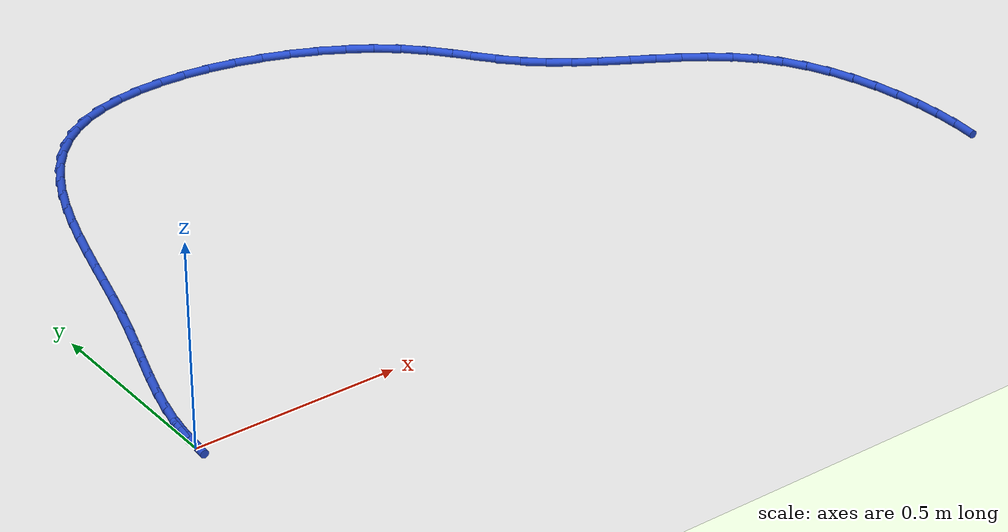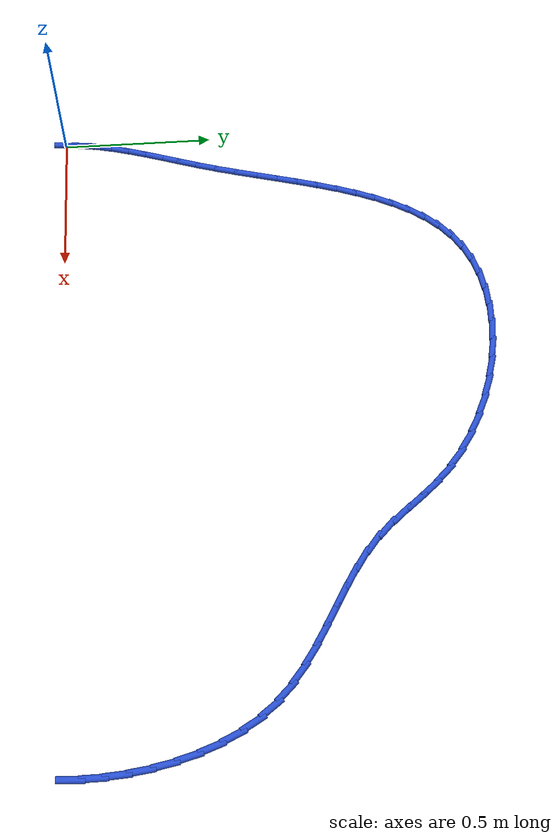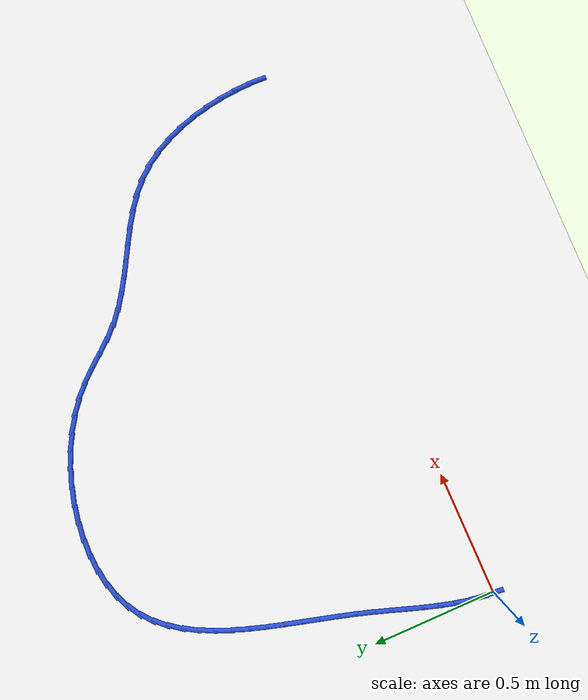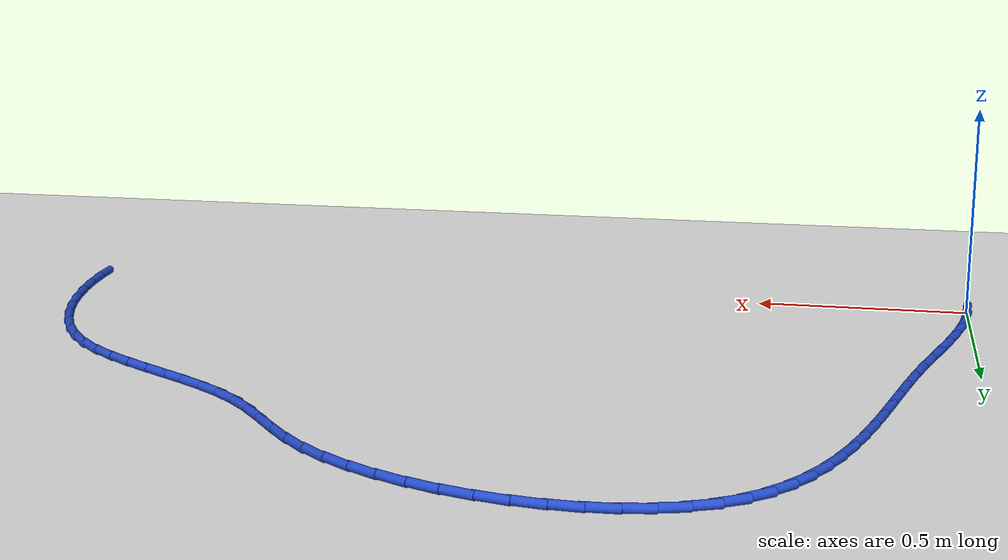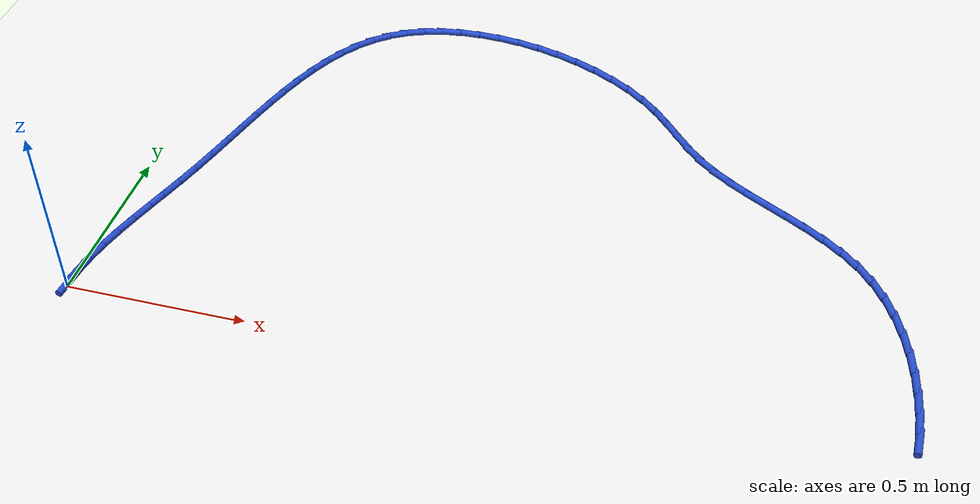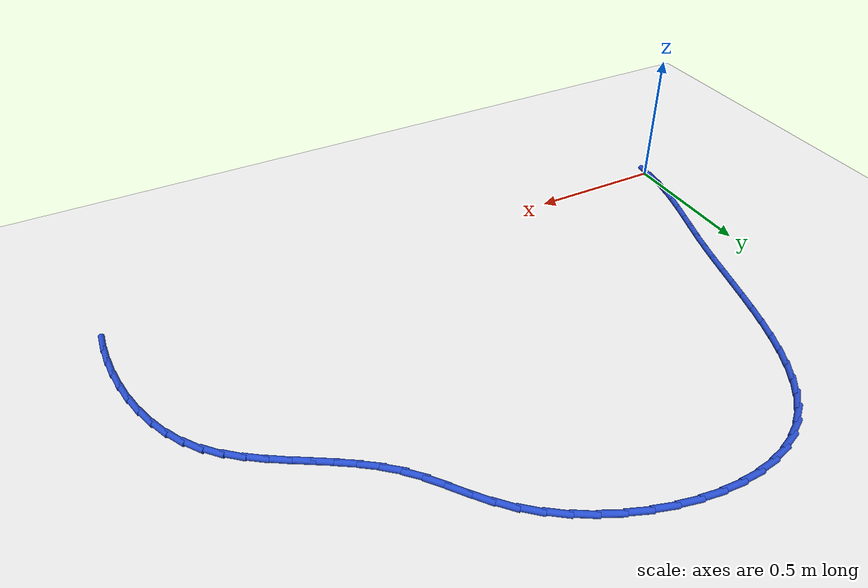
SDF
<sdf version="1.6">
 <world name="default">
  <model name="ground_plane">
   <static>1</static>
   <link name="link">
    <collision name="collision">
     <geometry><plane><normal>0 0 1</normal><size>100 100</size></plane></geometry>
     <surface><friction><ode><mu>100</mu><mu2>50</mu2></ode></friction></surface>
    </collision>
    <visual name="visual">
     <cast_shadows>0</cast_shadows>
     <geometry><plane><normal>0 0 1</normal><size>100 100</size></plane></geometry>
     <material>
      <script><uri>file://media/materials/scripts/gazebo.material</uri><name>Gazebo/WhiteGlow</name></script>
     </material>
    </visual>
   </link>
  </model>
  <model name="line">
   <link name="link_1">
    <pose>0.005791417262170077 0.06033211300853478 0.01 0 1.57 1.398286522696529</pose>
    <collision name="collision">
     <geometry><cylinder><radius>0.01</radius><length>0.08</length></cylinder></geometry>
    </collision>
    <visual name="visual">
     <material>
      <script><name>Gazebo/Blue</name><uri>file://media/materials/scripts/gazebo.material</uri></script>
     </material>
     <geometry><cylinder><radius>0.01</radius><length>0.08</length></cylinder></geometry>
    </visual>
   </link>
   <link name="link_2">
    <pose>0.016213847294796645 0.12014804725382705 0.01 0 1.57 1.3365642725188103</pose>
    <collision name="collision">
     <geometry><cylinder><radius>0.01</radius><length>0.08</length></cylinder></geometry>
    </collision>
    <visual name="visual">
     <material>
      <script><name>Gazebo/Blue</name><uri>file://media/materials/scripts/gazebo.material</uri></script>
     </material>
     <geometry><cylinder><radius>0.01</radius><length>0.08</length></cylinder></geometry>
    </visual>
   </link>
   <link name="link_3">
    <pose>0.03044249601915345 0.17977897757829422 0.01 0 1.57 1.290473283274684</pose>
    <collision name="collision">
     <geometry><cylinder><radius>0.01</radius><length>0.08</length></cylinder></geometry>
    </collision>
    <visual name="visual">
     <material>
      <script><name>Gazebo/Blue</name><uri>file://media/materials/scripts/gazebo.material</uri></script>
     </material>
     <geometry><cylinder><radius>0.01</radius><length>0.08</length></cylinder></geometry>
    </visual>
   </link>
   <link name="link_4">
    <pose>0.04765256935651429 0.23955607882435376 0.01 0 1.57 1.2598100341483265</pose>
    <collision name="collision">
     <geometry><cylinder><radius>0.01</radius><length>0.08</length></cylinder></geometry>
    </collision>
    <visual name="visual">
     <material>
      <script><name>Gazebo/Blue</name><uri>file://media/materials/scripts/gazebo.material</uri></script>
     </material>
     <geometry><cylinder><radius>0.01</radius><length>0.08</length></cylinder></geometry>
    </visual>
   </link>
   <link name="link_5">
    <pose>0.06701927322815289 0.29981052583442314 0.01 0 1.57 1.243980994895997</pose>
    <collision name="collision">
     <geometry><cylinder><radius>0.01</radius><length>0.08</length></cylinder></geometry>
    </collision>
    <visual name="visual">
     <material>
      <script><name>Gazebo/Blue</name><uri>file://media/materials/scripts/gazebo.material</uri></script>
     </material>
     <geometry><cylinder><radius>0.01</radius><length>0.08</length></cylinder></geometry>
    </visual>
   </link>
   <link name="link_6">
    <pose>0.08771781355534311 0.3608734934509199 0.01 0 1.57 1.2422412927426736</pose>
    <collision name="collision">
     <geometry><cylinder><radius>0.01</radius><length>0.08</length></cylinder></geometry>
    </collision>
    <visual name="visual">
     <material>
      <script><name>Gazebo/Blue</name><uri>file://media/materials/scripts/gazebo.material</uri></script>
     </material>
     <geometry><cylinder><radius>0.01</radius><length>0.08</length></cylinder></geometry>
    </visual>
   </link>
   <link name="link_7">
    <pose>0.10892339625935861 0.42307615651626107 0.01 0 1.57 1.2538121363242396</pose>
    <collision name="collision">
     <geometry><cylinder><radius>0.01</radius><length>0.08</length></cylinder></geometry>
    </collision>
    <visual name="visual">
     <material>
      <script><name>Gazebo/Blue</name><uri>file://media/materials/scripts/gazebo.material</uri></script>
     </material>
     <geometry><cylinder><radius>0.01</radius><length>0.08</length></cylinder></geometry>
    </visual>
   </link>
   <link name="link_8">
    <pose>0.12981122726147326 0.4867496898728646 0.01 0 1.57 1.2760298569545596</pose>
    <collision name="collision">
     <geometry><cylinder><radius>0.01</radius><length>0.08</length></cylinder></geometry>
    </collision>
    <visual name="visual">
     <material>
      <script><name>Gazebo/Blue</name><uri>file://media/materials/scripts/gazebo.material</uri></script>
     </material>
     <geometry><cylinder><radius>0.01</radius><length>0.08</length></cylinder></geometry>
    </visual>
   </link>
   <link name="link_9">
    <pose>0.14966594007184378 0.5521448940590044 0.01 0 1.57 1.294548348344521</pose>
    <collision name="collision">
     <geometry><cylinder><radius>0.01</radius><length>0.08</length></cylinder></geometry>
    </collision>
    <visual name="visual">
     <material>
      <script><name>Gazebo/Blue</name><uri>file://media/materials/scripts/gazebo.material</uri></script>
     </material>
     <geometry><cylinder><radius>0.01</radius><length>0.08</length></cylinder></geometry>
    </visual>
   </link>
   <link name="link_10">
    <pose>0.16859342630460544 0.6189093574860756 0.01 0 1.57 1.30360538274102</pose>
    <collision name="collision">
     <geometry><cylinder><radius>0.01</radius><length>0.08</length></cylinder></geometry>
    </collision>
    <visual name="visual">
     <material>
      <script><name>Gazebo/Blue</name><uri>file://media/materials/scripts/gazebo.material</uri></script>
     </material>
     <geometry><cylinder><radius>0.01</radius><length>0.08</length></cylinder></geometry>
    </visual>
   </link>
   <link name="link_11">
    <pose>0.18707262465838037 0.6864166663679072 0.01 0 1.57 1.3035913028330612</pose>
    <collision name="collision">
     <geometry><cylinder><radius>0.01</radius><length>0.08</length></cylinder></geometry>
    </collision>
    <visual name="visual">
     <material>
      <script><name>Gazebo/Blue</name><uri>file://media/materials/scripts/gazebo.material</uri></script>
     </material>
     <geometry><cylinder><radius>0.01</radius><length>0.08</length></cylinder></geometry>
    </visual>
   </link>
   <link name="link_12">
    <pose>0.20558434236194545 0.7540390344873674 0.01 0 1.57 1.2945524667272263</pose>
    <collision name="collision">
     <geometry><cylinder><radius>0.01</radius><length>0.08</length></cylinder></geometry>
    </collision>
    <visual name="visual">
     <material>
      <script><name>Gazebo/Blue</name><uri>file://media/materials/scripts/gazebo.material</uri></script>
     </material>
     <geometry><cylinder><radius>0.01</radius><length>0.08</length></cylinder></geometry>
    </visual>
   </link>
   <link name="link_13">
    <pose>0.22460938664407729 0.8211486756273239 0.01 0 1.57 1.2761656620018444</pose>
    <collision name="collision">
     <geometry><cylinder><radius>0.01</radius><length>0.08</length></cylinder></geometry>
    </collision>
    <visual name="visual">
     <material>
      <script><name>Gazebo/Blue</name><uri>file://media/materials/scripts/gazebo.material</uri></script>
     </material>
     <geometry><cylinder><radius>0.01</radius><length>0.08</length></cylinder></geometry>
    </visual>
   </link>
   <link name="link_14">
    <pose>0.24462856473355266 0.8871178035706447 0.01 0 1.57 1.2477308114004202</pose>
    <collision name="collision">
     <geometry><cylinder><radius>0.01</radius><length>0.08</length></cylinder></geometry>
    </collision>
    <visual name="visual">
     <material>
      <script><name>Gazebo/Blue</name><uri>file://media/materials/scripts/gazebo.material</uri></script>
     </material>
     <geometry><cylinder><radius>0.01</radius><length>0.08</length></cylinder></geometry>
    </visual>
   </link>
   <link name="link_15">
    <pose>0.26612268385914833 0.9513186321001978 0.01 0 1.57 1.2081574771541412</pose>
    <collision name="collision">
     <geometry><cylinder><radius>0.01</radius><length>0.08</length></cylinder></geometry>
    </collision>
    <visual name="visual">
     <material>
      <script><name>Gazebo/Blue</name><uri>file://media/materials/scripts/gazebo.material</uri></script>
     </material>
     <geometry><cylinder><radius>0.01</radius><length>0.08</length></cylinder></geometry>
    </visual>
   </link>
   <link name="link_16">
    <pose>0.28957255124964126 1.0131233749988517 0.01 0 1.57 1.1559639665454837</pose>
    <collision name="collision">
     <geometry><cylinder><radius>0.01</radius><length>0.08</length></cylinder></geometry>
    </collision>
    <visual name="visual">
     <material>
      <script><name>Gazebo/Blue</name><uri>file://media/materials/scripts/gazebo.material</uri></script>
     </material>
     <geometry><cylinder><radius>0.01</radius><length>0.08</length></cylinder></geometry>
    </visual>
   </link>
   <link name="link_17">
    <pose>0.3154589741338079 1.0719042460494737 0.01 0 1.57 1.0893286654853482</pose>
    <collision name="collision">
     <geometry><cylinder><radius>0.01</radius><length>0.08</length></cylinder></geometry>
    </collision>
    <visual name="visual">
     <material>
      <script><name>Gazebo/Blue</name><uri>file://media/materials/scripts/gazebo.material</uri></script>
     </material>
     <geometry><cylinder><radius>0.01</radius><length>0.08</length></cylinder></geometry>
    </visual>
   </link>
   <link name="link_18">
    <pose>0.3442627597404253 1.1270334590349322 0.01 0 1.57 1.0062676093985456</pose>
    <collision name="collision">
     <geometry><cylinder><radius>0.01</radius><length>0.08</length></cylinder></geometry>
    </collision>
    <visual name="visual">
     <material>
      <script><name>Gazebo/Blue</name><uri>file://media/materials/scripts/gazebo.material</uri></script>
     </material>
     <geometry><cylinder><radius>0.01</radius><length>0.08</length></cylinder></geometry>
    </visual>
   </link>
   <link name="link_19">
    <pose>0.3764647152982702 1.1778832277380957 0.01 0 1.57 0.9050528995444811</pose>
    <collision name="collision">
     <geometry><cylinder><radius>0.01</radius><length>0.08</length></cylinder></geometry>
    </collision>
    <visual name="visual">
     <material>
      <script><name>Gazebo/Blue</name><uri>file://media/materials/scripts/gazebo.material</uri></script>
     </material>
     <geometry><cylinder><radius>0.01</radius><length>0.08</length></cylinder></geometry>
    </visual>
   </link>
   <link name="link_20">
    <pose>0.4125456480361194 1.2238257659418317 0.01 0 1.57 0.7849875711798635</pose>
    <collision name="collision">
     <geometry><cylinder><radius>0.01</radius><length>0.08</length></cylinder></geometry>
    </collision>
    <visual name="visual">
     <material>
      <script><name>Gazebo/Blue</name><uri>file://media/materials/scripts/gazebo.material</uri></script>
     </material>
     <geometry><cylinder><radius>0.01</radius><length>0.08</length></cylinder></geometry>
    </visual>
   </link>
   <link name="link_21">
    <pose>0.45298636518274926 1.2642332874290076 0.01 0 1.57 0.6474993623314645</pose>
    <collision name="collision">
     <geometry><cylinder><radius>0.01</radius><length>0.08</length></cylinder></geometry>
    </collision>
    <visual name="visual">
     <material>
      <script><name>Gazebo/Blue</name><uri>file://media/materials/scripts/gazebo.material</uri></script>
     </material>
     <geometry><cylinder><radius>0.01</radius><length>0.08</length></cylinder></geometry>
    </visual>
   </link>
   <link name="link_22">
    <pose>0.4982676739669371 1.298478005982493 0.01 0 1.57 0.4977226437772232</pose>
    <collision name="collision">
     <geometry><cylinder><radius>0.01</radius><length>0.08</length></cylinder></geometry>
    </collision>
    <visual name="visual">
     <material>
      <script><name>Gazebo/Blue</name><uri>file://media/materials/scripts/gazebo.material</uri></script>
     </material>
     <geometry><cylinder><radius>0.01</radius><length>0.08</length></cylinder></geometry>
    </visual>
   </link>
   <link name="link_23">
    <pose>0.5488364186487724 1.3259544896163875 0.01 0 1.57 0.3536906703602073</pose>
    <collision name="collision">
     <geometry><cylinder><radius>0.01</radius><length>0.08</length></cylinder></geometry>
    </collision>
    <visual name="visual">
     <material>
      <script><name>Gazebo/Blue</name><uri>file://media/materials/scripts/gazebo.material</uri></script>
     </material>
     <geometry><cylinder><radius>0.01</radius><length>0.08</length></cylinder></geometry>
    </visual>
   </link>
   <link name="link_24">
    <pose>0.6044725298983119 1.346496265045421 0.01 0 1.57 0.2271838226326113</pose>
    <collision name="collision">
     <geometry><cylinder><radius>0.01</radius><length>0.08</length></cylinder></geometry>
    </collision>
    <visual name="visual">
     <material>
      <script><name>Gazebo/Blue</name><uri>file://media/materials/scripts/gazebo.material</uri></script>
     </material>
     <geometry><cylinder><radius>0.01</radius><length>0.08</length></cylinder></geometry>
    </visual>
   </link>
   <link name="link_25">
    <pose>0.6643469195547554 1.3603377116864472 0.01 0 1.57 0.11629343175415617</pose>
    <collision name="collision">
     <geometry><cylinder><radius>0.01</radius><length>0.08</length></cylinder></geometry>
    </collision>
    <visual name="visual">
     <material>
      <script><name>Gazebo/Blue</name><uri>file://media/materials/scripts/gazebo.material</uri></script>
     </material>
     <geometry><cylinder><radius>0.01</radius><length>0.08</length></cylinder></geometry>
    </visual>
   </link>
   <link name="link_26">
    <pose>0.7276081453822683 1.3677279222803236 0.01 0 1.57 0.01805469941722886</pose>
    <collision name="collision">
     <geometry><cylinder><radius>0.01</radius><length>0.08</length></cylinder></geometry>
    </collision>
    <visual name="visual">
     <material>
      <script><name>Gazebo/Blue</name><uri>file://media/materials/scripts/gazebo.material</uri></script>
     </material>
     <geometry><cylinder><radius>0.01</radius><length>0.08</length></cylinder></geometry>
    </visual>
   </link>
   <link name="link_27">
    <pose>0.7934047651450156 1.3689159895679062 0.01 0 1.57 -0.07049565741435361</pose>
    <collision name="collision">
     <geometry><cylinder><radius>0.01</radius><length>0.08</length></cylinder></geometry>
    </collision>
    <visual name="visual">
     <material>
      <script><name>Gazebo/Blue</name><uri>file://media/materials/scripts/gazebo.material</uri></script>
     </material>
     <geometry><cylinder><radius>0.01</radius><length>0.08</length></cylinder></geometry>
    </visual>
   </link>
   <link name="link_28">
    <pose>0.8608853366071625 1.364151006290052 0.01 0 1.57 -0.15206635498021537</pose>
    <collision name="collision">
     <geometry><cylinder><radius>0.01</radius><length>0.08</length></cylinder></geometry>
    </collision>
    <visual name="visual">
     <material>
      <script><name>Gazebo/Blue</name><uri>file://media/materials/scripts/gazebo.material</uri></script>
     </material>
     <geometry><cylinder><radius>0.01</radius><length>0.08</length></cylinder></geometry>
    </visual>
   </link>
   <link name="link_29">
    <pose>0.9291984175328736 1.3536820651876167 0.01 0 1.57 -0.2290723013235379</pose>
    <collision name="collision">
     <geometry><cylinder><radius>0.01</radius><length>0.08</length></cylinder></geometry>
    </collision>
    <visual name="visual">
     <material>
      <script><name>Gazebo/Blue</name><uri>file://media/materials/scripts/gazebo.material</uri></script>
     </material>
     <geometry><cylinder><radius>0.01</radius><length>0.08</length></cylinder></geometry>
    </visual>
   </link>
   <link name="link_30">
    <pose>0.9974925656863146 1.337758259001458 0.01 0 1.57 -0.3036906500006099</pose>
    <collision name="collision">
     <geometry><cylinder><radius>0.01</radius><length>0.08</length></cylinder></geometry>
    </collision>
    <visual name="visual">
     <material>
      <script><name>Gazebo/Blue</name><uri>file://media/materials/scripts/gazebo.material</uri></script>
     </material>
     <geometry><cylinder><radius>0.01</radius><length>0.08</length></cylinder></geometry>
    </visual>
   </link>
   <link name="link_31">
    <pose>1.06491633883165 1.3166286804724316 0.01 0 1.57 -0.37795144077282766</pose>
    <collision name="collision">
     <geometry><cylinder><radius>0.01</radius><length>0.08</length></cylinder></geometry>
    </collision>
    <visual name="visual">
     <material>
      <script><name>Gazebo/Blue</name><uri>file://media/materials/scripts/gazebo.material</uri></script>
     </material>
     <geometry><cylinder><radius>0.01</radius><length>0.08</length></cylinder></geometry>
    </visual>
   </link>
   <link name="link_32">
    <pose>1.1306182947330456 1.2905424223413946 0.01 0 1.57 -0.4538357984959897</pose>
    <collision name="collision">
     <geometry><cylinder><radius>0.01</radius><length>0.08</length></cylinder></geometry>
    </collision>
    <visual name="visual">
     <material>
      <script><name>Gazebo/Blue</name><uri>file://media/materials/scripts/gazebo.material</uri></script>
     </material>
     <geometry><cylinder><radius>0.01</radius><length>0.08</length></cylinder></geometry>
    </visual>
   </link>
   <link name="link_33">
    <pose>1.1937469911546659 1.259748577349203 0.01 0 1.57 -0.533369281250643</pose>
    <collision name="collision">
     <geometry><cylinder><radius>0.01</radius><length>0.08</length></cylinder></geometry>
    </collision>
    <visual name="visual">
     <material>
      <script><name>Gazebo/Blue</name><uri>file://media/materials/scripts/gazebo.material</uri></script>
     </material>
     <geometry><cylinder><radius>0.01</radius><length>0.08</length></cylinder></geometry>
    </visual>
   </link>
   <link name="link_34">
    <pose>1.253450985860676 1.224496238236714 0.01 0 1.57 -0.6186997440819427</pose>
    <collision name="collision">
     <geometry><cylinder><radius>0.01</radius><length>0.08</length></cylinder></geometry>
    </collision>
    <visual name="visual">
     <material>
      <script><name>Gazebo/Blue</name><uri>file://media/materials/scripts/gazebo.material</uri></script>
     </material>
     <geometry><cylinder><radius>0.01</radius><length>0.08</length></cylinder></geometry>
    </visual>
   </link>
   <link name="link_35">
    <pose>1.3088788366152408 1.1850344977447833 0.01 0 1.57 -0.7121401925658405</pose>
    <collision name="collision">
     <geometry><cylinder><radius>0.01</radius><length>0.08</length></cylinder></geometry>
    </collision>
    <visual name="visual">
     <material>
      <script><name>Gazebo/Blue</name><uri>file://media/materials/scripts/gazebo.material</uri></script>
     </material>
     <geometry><cylinder><radius>0.01</radius><length>0.08</length></cylinder></geometry>
    </visual>
   </link>
   <link name="link_36">
    <pose>1.359179101182526 1.1416124486142685 0.01 0 1.57 -0.8107153755060906</pose>
    <collision name="collision">
     <geometry><cylinder><radius>0.01</radius><length>0.08</length></cylinder></geometry>
    </collision>
    <visual name="visual">
     <material>
      <script><name>Gazebo/Blue</name><uri>file://media/materials/scripts/gazebo.material</uri></script>
     </material>
     <geometry><cylinder><radius>0.01</radius><length>0.08</length></cylinder></geometry>
    </visual>
   </link>
   <link name="link_37">
    <pose>1.403828822398304 1.0946426816759738 0.01 0 1.57 -0.8781142881771004</pose>
    <collision name="collision">
     <geometry><cylinder><radius>0.01</radius><length>0.08</length></cylinder></geometry>
    </collision>
    <visual name="visual">
     <material>
      <script><name>Gazebo/Blue</name><uri>file://media/materials/scripts/gazebo.material</uri></script>
     </material>
     <geometry><cylinder><radius>0.01</radius><length>0.08</length></cylinder></geometry>
    </visual>
   </link>
   <link name="link_38">
    <pose>1.444501418576923 1.045630997853326 0.01 0 1.57 -0.8961802099609556</pose>
    <collision name="collision">
     <geometry><cylinder><radius>0.01</radius><length>0.08</length></cylinder></geometry>
    </collision>
    <visual name="visual">
     <material>
      <script><name>Gazebo/Blue</name><uri>file://media/materials/scripts/gazebo.material</uri></script>
     </material>
     <geometry><cylinder><radius>0.01</radius><length>0.08</length></cylinder></geometry>
    </visual>
   </link>
   <link name="link_39">
    <pose>1.4837709744472047 0.9965314900963153 0.01 0 1.57 -0.8626723096613713</pose>
    <collision name="collision">
     <geometry><cylinder><radius>0.01</radius><length>0.08</length></cylinder></geometry>
    </collision>
    <visual name="visual">
     <material>
      <script><name>Gazebo/Blue</name><uri>file://media/materials/scripts/gazebo.material</uri></script>
     </material>
     <geometry><cylinder><radius>0.01</radius><length>0.08</length></cylinder></geometry>
    </visual>
   </link>
   <link name="link_40">
    <pose>1.5242143080610666 0.9492996118219499 0.01 0 1.57 -0.7776373605330166</pose>
    <collision name="collision">
     <geometry><cylinder><radius>0.01</radius><length>0.08</length></cylinder></geometry>
    </collision>
    <visual name="visual">
     <material>
      <script><name>Gazebo/Blue</name><uri>file://media/materials/scripts/gazebo.material</uri></script>
     </material>
     <geometry><cylinder><radius>0.01</radius><length>0.08</length></cylinder></geometry>
    </visual>
   </link>
   <link name="link_41">
    <pose>1.568350407751804 0.9058433131157999 0.01 0 1.57 -0.6776371715958392</pose>
    <collision name="collision">
     <geometry><cylinder><radius>0.01</radius><length>0.08</length></cylinder></geometry>
    </collision>
    <visual name="visual">
     <material>
      <script><name>Gazebo/Blue</name><uri>file://media/materials/scripts/gazebo.material</uri></script>
     </material>
     <geometry><cylinder><radius>0.01</radius><length>0.08</length></cylinder></geometry>
    </visual>
   </link>
   <link name="link_42">
    <pose>1.6170101416936191 0.8666838637659913 0.01 0 1.57 -0.6035360127516033</pose>
    <collision name="collision">
     <geometry><cylinder><radius>0.01</radius><length>0.08</length></cylinder></geometry>
    </collision>
    <visual name="visual">
     <material>
      <script><name>Gazebo/Blue</name><uri>file://media/materials/scripts/gazebo.material</uri></script>
     </material>
     <geometry><cylinder><radius>0.01</radius><length>0.08</length></cylinder></geometry>
    </visual>
   </link>
   <link name="link_43">
    <pose>1.6691095548290942 0.8307696315168651 0.01 0 1.57 -0.5564231510348724</pose>
    <collision name="collision">
     <geometry><cylinder><radius>0.01</radius><length>0.08</length></cylinder></geometry>
    </collision>
    <visual name="visual">
     <material>
      <script><name>Gazebo/Blue</name><uri>file://media/materials/scripts/gazebo.material</uri></script>
     </material>
     <geometry><cylinder><radius>0.01</radius><length>0.08</length></cylinder></geometry>
    </visual>
   </link>
   <link name="link_44">
    <pose>1.7234612959626665 0.7969640509480115 0.01 0 1.57 -0.534874374508267</pose>
    <collision name="collision">
     <geometry><cylinder><radius>0.01</radius><length>0.08</length></cylinder></geometry>
    </collision>
    <visual name="visual">
     <material>
      <script><name>Gazebo/Blue</name><uri>file://media/materials/scripts/gazebo.material</uri></script>
     </material>
     <geometry><cylinder><radius>0.01</radius><length>0.08</length></cylinder></geometry>
    </visual>
   </link>
   <link name="link_45">
    <pose>1.7788780138987763 0.76413055663902 0.01 0 1.57 -0.5380406897853286</pose>
    <collision name="collision">
     <geometry><cylinder><radius>0.01</radius><length>0.08</length></cylinder></geometry>
    </collision>
    <visual name="visual">
     <material>
      <script><name>Gazebo/Blue</name><uri>file://media/materials/scripts/gazebo.material</uri></script>
     </material>
     <geometry><cylinder><radius>0.01</radius><length>0.08</length></cylinder></geometry>
    </visual>
   </link>
   <link name="link_46">
    <pose>1.83417235744186 0.7311325831694796 0.01 0 1.57 -0.5660059776648491</pose>
    <collision name="collision">
     <geometry><cylinder><radius>0.01</radius><length>0.08</length></cylinder></geometry>
    </collision>
    <visual name="visual">
     <material>
      <script><name>Gazebo/Blue</name><uri>file://media/materials/scripts/gazebo.material</uri></script>
     </material>
     <geometry><cylinder><radius>0.01</radius><length>0.08</length></cylinder></geometry>
    </visual>
   </link>
   <link name="link_47">
    <pose>1.8881569753963567 0.6968335651189798 0.01 0 1.57 -0.6197324641694288</pose>
    <collision name="collision">
     <geometry><cylinder><radius>0.01</radius><length>0.08</length></cylinder></geometry>
    </collision>
    <visual name="visual">
     <material>
      <script><name>Gazebo/Blue</name><uri>file://media/materials/scripts/gazebo.material</uri></script>
     </material>
     <geometry><cylinder><radius>0.01</radius><length>0.08</length></cylinder></geometry>
    </visual>
   </link>
   <link name="link_48">
    <pose>1.939644516566705 0.6600969370671101 0.01 0 1.57 -0.700572391376341</pose>
    <collision name="collision">
     <geometry><cylinder><radius>0.01</radius><length>0.08</length></cylinder></geometry>
    </collision>
    <visual name="visual">
     <material>
      <script><name>Gazebo/Blue</name><uri>file://media/materials/scripts/gazebo.material</uri></script>
     </material>
     <geometry><cylinder><radius>0.01</radius><length>0.08</length></cylinder></geometry>
    </visual>
   </link>
   <link name="link_49">
    <pose>1.9874476297573418 0.61978613359346 0.01 0 1.57 -0.8091583904154367</pose>
    <collision name="collision">
     <geometry><cylinder><radius>0.01</radius><length>0.08</length></cylinder></geometry>
    </collision>
    <visual name="visual">
     <material>
      <script><name>Gazebo/Blue</name><uri>file://media/materials/scripts/gazebo.material</uri></script>
     </material>
     <geometry><cylinder><radius>0.01</radius><length>0.08</length></cylinder></geometry>
    </visual>
   </link>
   <link name="link_50">
    <pose>2.0303789786947046 0.5747646111148644 0.01 0 1.57 -0.9361896305626397</pose>
    <collision name="collision">
     <geometry><cylinder><radius>0.01</radius><length>0.08</length></cylinder></geometry>
    </collision>
    <visual name="visual">
     <material>
      <script><name>Gazebo/Blue</name><uri>file://media/materials/scripts/gazebo.material</uri></script>
     </material>
     <geometry><cylinder><radius>0.01</radius><length>0.08</length></cylinder></geometry>
    </visual>
   </link>
   <link name="link_51">
    <pose>2.067529009987769 0.5243023408566057 0.01 0 1.57 -1.0528575622218015</pose>
    <collision name="collision">
     <geometry><cylinder><radius>0.01</radius><length>0.08</length></cylinder></geometry>
    </collision>
    <visual name="visual">
     <material>
      <script><name>Gazebo/Blue</name><uri>file://media/materials/scripts/gazebo.material</uri></script>
     </material>
     <geometry><cylinder><radius>0.01</radius><length>0.08</length></cylinder></geometry>
    </visual>
   </link>
   <link name="link_52">
    <pose>2.098976195271886 0.4691151959680341 0.01 0 1.57 -1.1543349953066921</pose>
    <collision name="collision">
     <geometry><cylinder><radius>0.01</radius><length>0.08</length></cylinder></geometry>
    </collision>
    <visual name="visual">
     <material>
      <script><name>Gazebo/Blue</name><uri>file://media/materials/scripts/gazebo.material</uri></script>
     </material>
     <geometry><cylinder><radius>0.01</radius><length>0.08</length></cylinder></geometry>
    </visual>
   </link>
   <link name="link_53">
    <pose>2.1250185789803218 0.4102403782313823 0.01 0 1.57 -1.2428097499542012</pose>
    <collision name="collision">
     <geometry><cylinder><radius>0.01</radius><length>0.08</length></cylinder></geometry>
    </collision>
    <visual name="visual">
     <material>
      <script><name>Gazebo/Blue</name><uri>file://media/materials/scripts/gazebo.material</uri></script>
     </material>
     <geometry><cylinder><radius>0.01</radius><length>0.08</length></cylinder></geometry>
    </visual>
   </link>
   <link name="link_54">
    <pose>2.1459542055463428 0.34871508942888146 0.01 0 1.57 -1.3207220865827094</pose>
    <collision name="collision">
     <geometry><cylinder><radius>0.01</radius><length>0.08</length></cylinder></geometry>
    </collision>
    <visual name="visual">
     <material>
      <script><name>Gazebo/Blue</name><uri>file://media/materials/scripts/gazebo.material</uri></script>
     </material>
     <geometry><cylinder><radius>0.01</radius><length>0.08</length></cylinder></geometry>
    </visual>
   </link>
   <link name="link_55">
    <pose>2.1620811194032115 0.28557653134276356 0.01 0 1.57 -1.3904602232362353</pose>
    <collision name="collision">
     <geometry><cylinder><radius>0.01</radius><length>0.08</length></cylinder></geometry>
    </collision>
    <visual name="visual">
     <material>
      <script><name>Gazebo/Blue</name><uri>file://media/materials/scripts/gazebo.material</uri></script>
     </material>
     <geometry><cylinder><radius>0.01</radius><length>0.08</length></cylinder></geometry>
    </visual>
   </link>
   <link name="link_56">
    <pose>2.1736973649841964 0.2218619057552596 0.01 0 1.57 -1.4542796409016194</pose>
    <collision name="collision">
     <geometry><cylinder><radius>0.01</radius><length>0.08</length></cylinder></geometry>
    </collision>
    <visual name="visual">
     <material>
      <script><name>Gazebo/Blue</name><uri>file://media/materials/scripts/gazebo.material</uri></script>
     </material>
     <geometry><cylinder><radius>0.01</radius><length>0.08</length></cylinder></geometry>
    </visual>
   </link>
   <link name="link_57">
    <pose>2.1811009867225613 0.15860841444860227 0.01 0 1.57 -1.5143952147470912</pose>
    <collision name="collision">
     <geometry><cylinder><radius>0.01</radius><length>0.08</length></cylinder></geometry>
    </collision>
    <visual name="visual">
     <material>
      <script><name>Gazebo/Blue</name><uri>file://media/materials/scripts/gazebo.material</uri></script>
     </material>
     <geometry><cylinder><radius>0.01</radius><length>0.08</length></cylinder></geometry>
    </visual>
   </link>
   <link name="link_58">
    <pose>2.1845922047069295 0.09677425696143765 0.01 0 1.57 1.5691598753971467</pose>
    <collision name="collision">
     <geometry><cylinder><radius>0.01</radius><length>0.08</length></cylinder></geometry>
    </collision>
    <visual name="visual">
     <material>
      <script><name>Gazebo/Blue</name><uri>file://media/materials/scripts/gazebo.material</uri></script>
     </material>
     <geometry><cylinder><radius>0.01</radius><length>0.08</length></cylinder></geometry>
    </visual>
   </link>
   <link name="link_59">
    <pose>2.1844935792279396 0.036506416995852074 0.01 0 1.57 1.5140604070977268</pose>
    <collision name="collision">
     <geometry><cylinder><radius>0.01</radius><length>0.08</length></cylinder></geometry>
    </collision>
    <visual name="visual">
     <material>
      <script><name>Gazebo/Blue</name><uri>file://media/materials/scripts/gazebo.material</uri></script>
     </material>
     <geometry><cylinder><radius>0.01</radius><length>0.08</length></cylinder></geometry>
    </visual>
   </link>
   <link name="link_120">
    <pose>-5.204170427930421e-17 4.163336342344337e-17 0.01 0 1.57 1.4719765692433227</pose>
    <collision name="collision">
     <geometry><cylinder><radius>0.01</radius><length>0.08</length></cylinder></geometry>
    </collision>
    <visual name="visual">
     <material>
      <script><name>Gazebo/Blue</name><uri>file://media/materials/scripts/gazebo.material</uri></script>
     </material>
     <geometry><cylinder><radius>0.01</radius><length>0.08</length></cylinder></geometry>
    </visual>
   </link>
   <link name="link_121">
    <pose>0.005971248872237649 0.06022883736189644 0.01 0 1.57 1.4719765692433233</pose>
    <collision name="collision">
     <geometry><cylinder><radius>0.01</radius><length>0.08</length></cylinder></geometry>
    </collision>
    <visual name="visual">
     <material>
      <script><name>Gazebo/Blue</name><uri>file://media/materials/scripts/gazebo.material</uri></script>
     </material>
     <geometry><cylinder><radius>0.01</radius><length>0.08</length></cylinder></geometry>
    </visual>
   </link>
  </model>
 </world>
</sdf>
